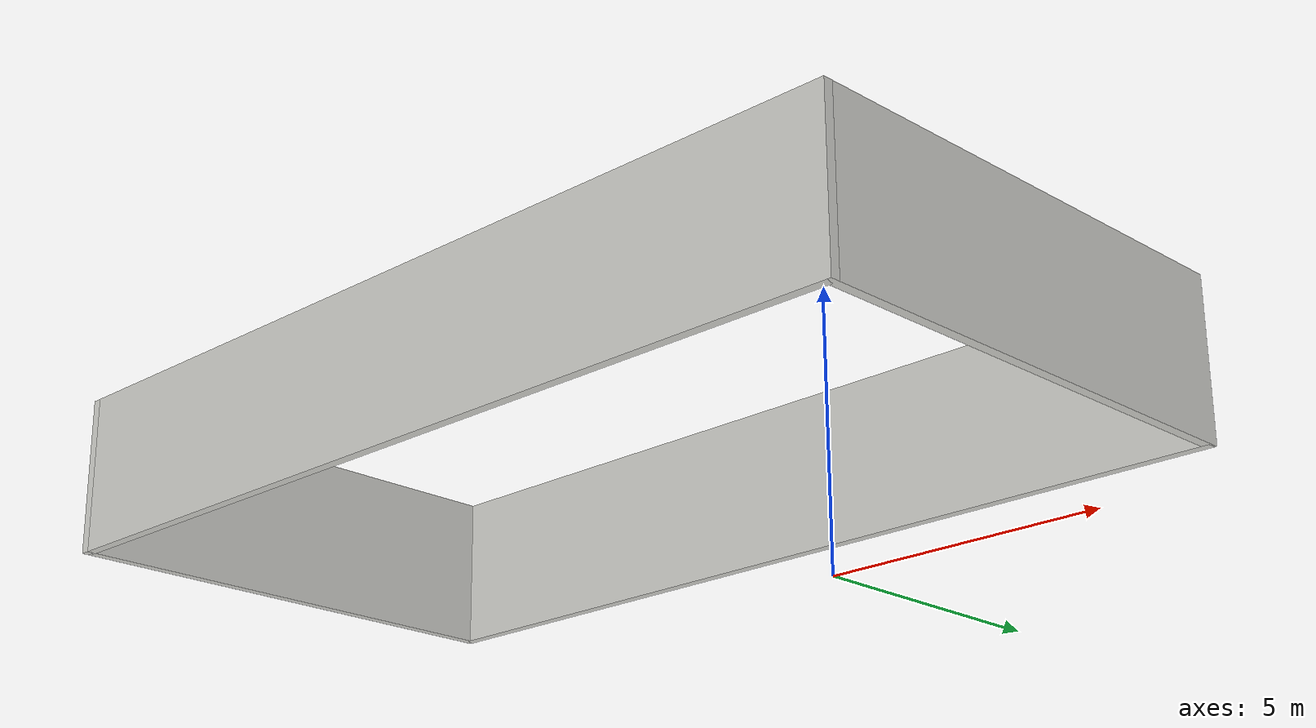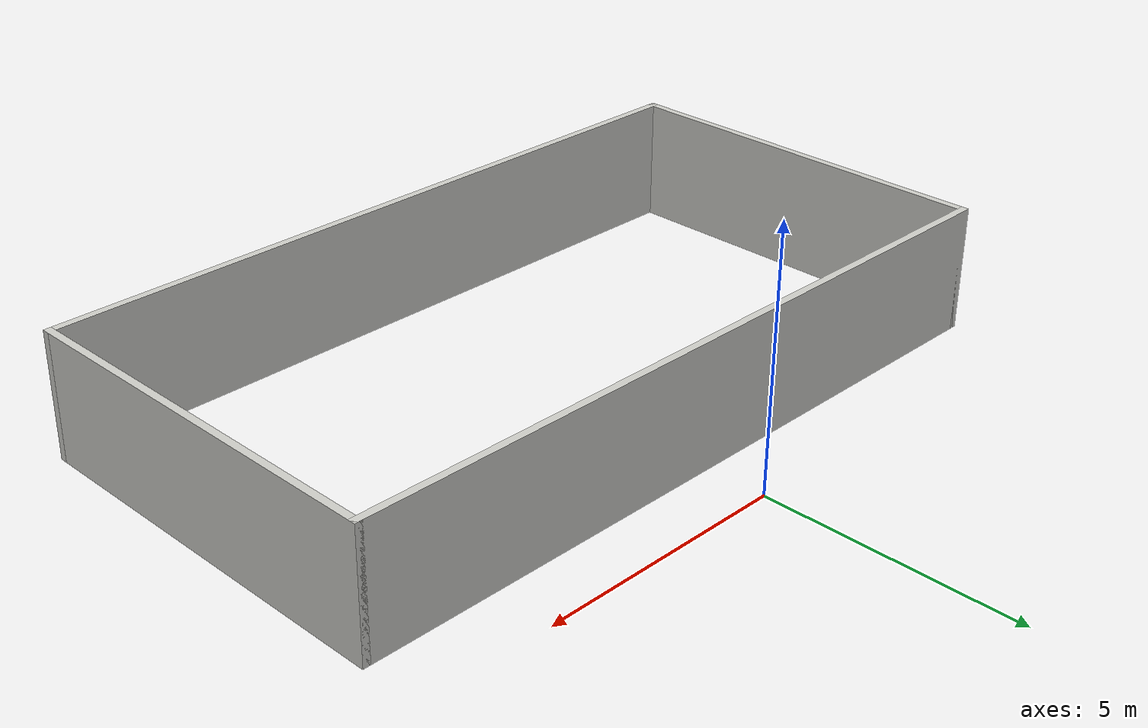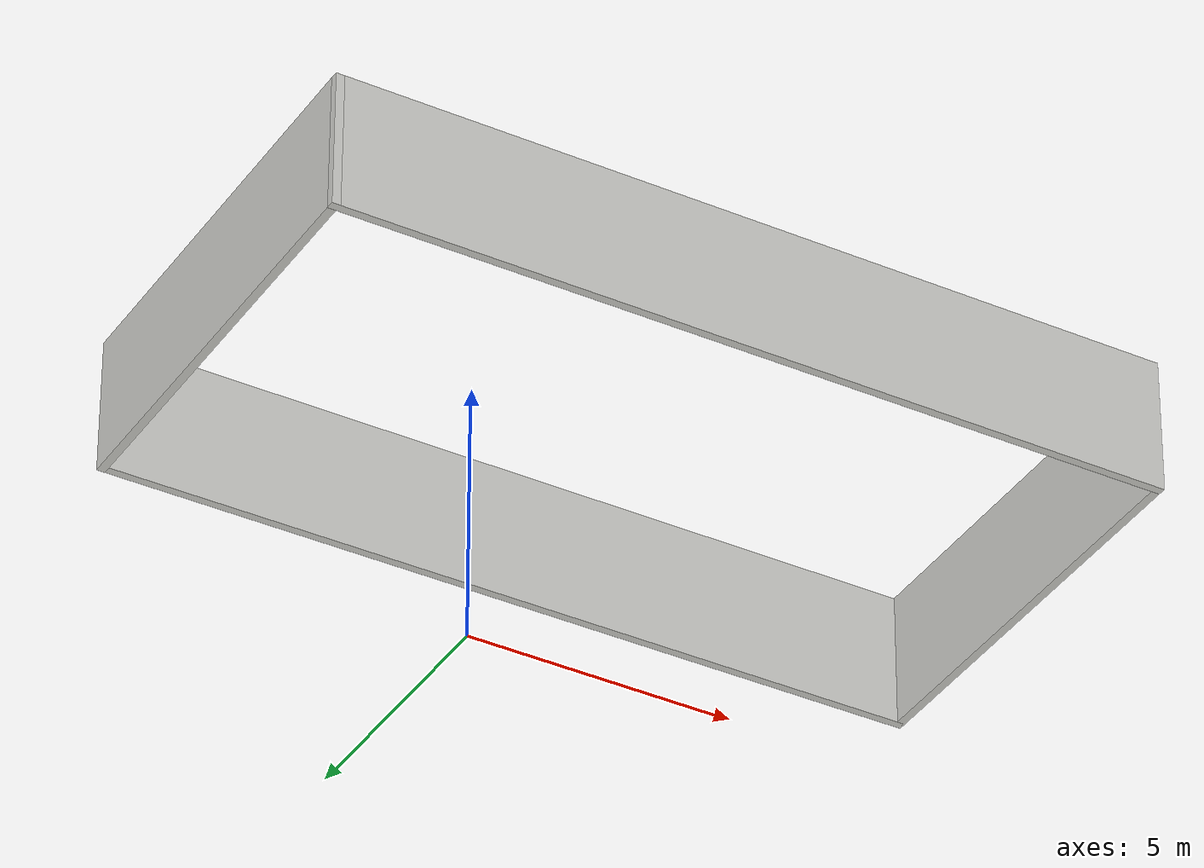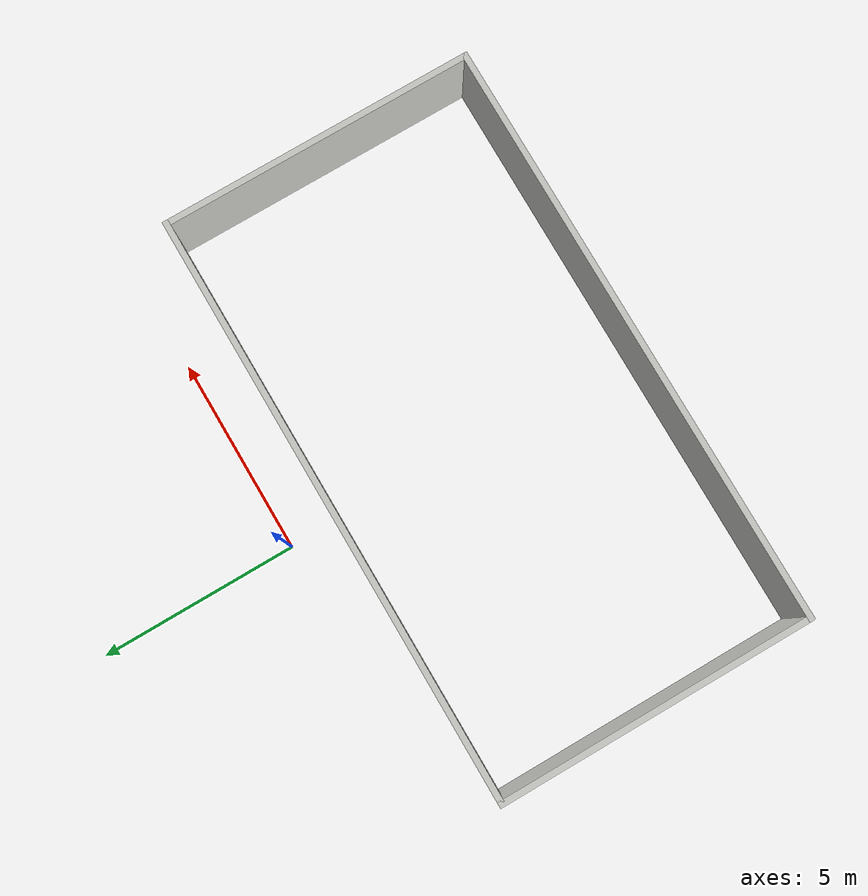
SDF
<?xml version='1.0'?>
<sdf version='1.6'>
  <model name='room_15x8'>
    <pose frame=''>0.125 -5.195 0 0 -0 0</pose>
    <link name='Wall_5'>
      <collision name='Wall_5_Collision'>
        <geometry>
          <box>
            <size>15 0.15 2.5</size>
          </box>
        </geometry>
        <pose frame=''>0 0 1.25 0 -0 0</pose>
      </collision>
      <visual name='Wall_5_Visual'>
        <pose frame=''>0 0 1.25 0 -0 0</pose>
        <geometry>
          <box>
            <size>15 0.15 2.5</size>
          </box>
        </geometry>
        <material>
          <script>
            <uri>file://media/materials/scripts/gazebo.material</uri>
            <name>Gazebo/CeilingTiled</name>
          </script>
          <ambient>0.996078 0.47451 0.0196078 1</ambient>
        </material>
        <meta>
          <layer>0</layer>
        </meta>
      </visual>
      <pose frame=''>0 3.925 0 0 -0 0</pose>
    </link>
    <link name='Wall_6'>
      <collision name='Wall_6_Collision'>
        <geometry>
          <box>
            <size>8 0.15 2.5</size>
          </box>
        </geometry>
        <pose frame=''>0 0 1.25 0 -0 0</pose>
      </collision>
      <visual name='Wall_6_Visual'>
        <pose frame=''>0 0 1.25 0 -0 0</pose>
        <geometry>
          <box>
            <size>8 0.15 2.5</size>
          </box>
        </geometry>
        <material>
          <script>
            <uri>file://media/materials/scripts/gazebo.material</uri>
            <name>Gazebo/CeilingTiled</name>
          </script>
          <ambient>0.996078 0.47451 0.0196078 1</ambient>
        </material>
        <meta>
          <layer>0</layer>
        </meta>
      </visual>
      <pose frame=''>7.425 0 0 0 -0 -1.5708</pose>
    </link>
    <link name='Wall_7'>
      <collision name='Wall_7_Collision'>
        <geometry>
          <box>
            <size>15 0.15 2.5</size>
          </box>
        </geometry>
        <pose frame=''>0 0 1.25 0 -0 0</pose>
      </collision>
      <visual name='Wall_7_Visual'>
        <pose frame=''>0 0 1.25 0 -0 0</pose>
        <geometry>
          <box>
            <size>15 0.15 2.5</size>
          </box>
        </geometry>
        <material>
          <script>
            <uri>file://media/materials/scripts/gazebo.material</uri>
            <name>Gazebo/CeilingTiled</name>
          </script>
          <ambient>0.996078 0.47451 0.0196078 1</ambient>
        </material>
        <meta>
          <layer>0</layer>
        </meta>
      </visual>
      <pose frame=''>0 -3.925 0 0 -0 3.14159</pose>
    </link>
    <link name='Wall_8'>
      <collision name='Wall_8_Collision'>
        <geometry>
          <box>
            <size>8 0.15 2.5</size>
          </box>
        </geometry>
        <pose frame=''>0 0 1.25 0 -0 0</pose>
      </collision>
      <visual name='Wall_8_Visual'>
        <pose frame=''>0 0 1.25 0 -0 0</pose>
        <geometry>
          <box>
            <size>8 0.15 2.5</size>
          </box>
        </geometry>
        <material>
          <script>
            <uri>file://media/materials/scripts/gazebo.material</uri>
            <name>Gazebo/CeilingTiled</name>
          </script>
          <ambient>0.996078 0.47451 0.0196078 1</ambient>
        </material>
        <meta>
          <layer>0</layer>
        </meta>
      </visual>
      <pose frame=''>-7.425 0 0 0 -0 1.5708</pose>
    </link>
    <static>1</static>
  </model>
</sdf>
